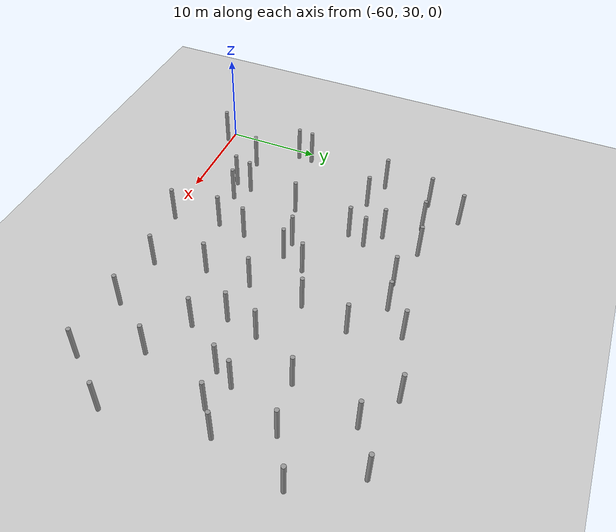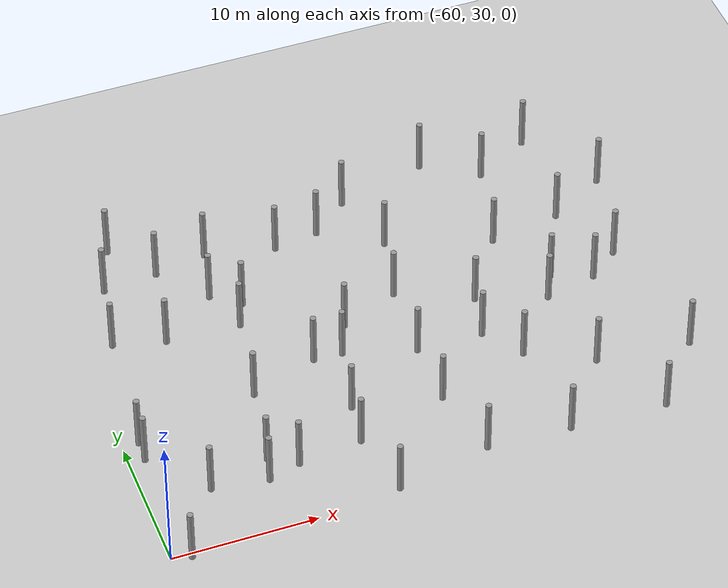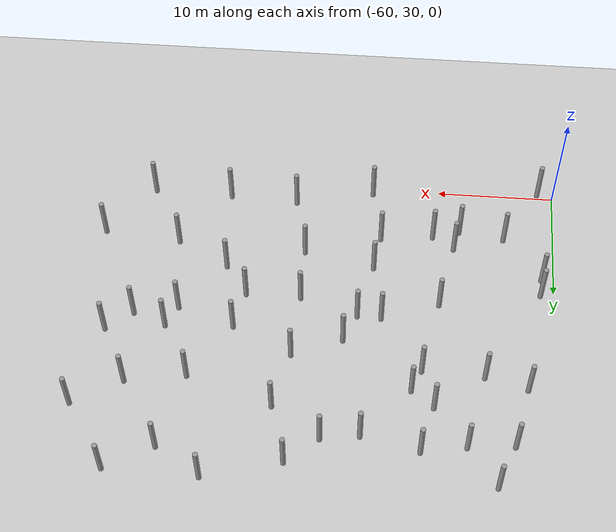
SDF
<sdf version="1.6">
 <world name="default">
  <model name="ground_plane">
   <static>1</static>
   <link name="link">
    <collision name="collision">
     <geometry><plane><normal>0 0 1</normal><size>200 200</size></plane></geometry>
     <surface><friction><ode><mu>100</mu><mu2>50</mu2></ode></friction></surface>
    </collision>
    <visual name="visual">
     <cast_shadows>0</cast_shadows>
     <geometry><plane><normal>0 0 1</normal><size>200 200</size></plane></geometry>
     <material>
      <script><uri>file://media/materials/scripts/gazebo.material</uri><name>Gazebo/Grey</name></script>
     </material>
    </visual>
   </link>
   <pose>0 100 0 0 0 0</pose>
  </model>
  <include>
   <name>tree_-58.6954111815_29.6490568716</name>
   <uri>model://tree</uri>
   <pose>-58.6954111815 29.6490568716 2 0 0 0</pose>
  </include>
  <include>
   <name>tree_-55.7131548604_34.7773403898</name>
   <uri>model://tree</uri>
   <pose>-55.7131548604 34.7773403898 2 0 0 0</pose>
  </include>
  <include>
   <name>tree_-58.9364265224_38.7444154299</name>
   <uri>model://tree</uri>
   <pose>-58.9364265224 38.7444154299 2 0 0 0</pose>
  </include>
  <include>
   <name>tree_-58.8538250546_40.3182792419</name>
   <uri>model://tree</uri>
   <pose>-58.8538250546 40.3182792419 2 0 0 0</pose>
  </include>
  <include>
   <name>tree_-57.7645659668_49.5563178604</name>
   <uri>model://tree</uri>
   <pose>-57.7645659668 49.5563178604 2 0 0 0</pose>
  </include>
  <include>
   <name>tree_-56.7306537601_54.748548233</name>
   <uri>model://tree</uri>
   <pose>-56.7306537601 54.748548233 2 0 0 0</pose>
  </include>
  <include>
   <name>tree_-55.3705627817_58.3967211748</name>
   <uri>model://tree</uri>
   <pose>-55.3705627817 58.3967211748 2 0 0 0</pose>
  </include>
  <include>
   <name>tree_-51.8869014859_34.2263567525</name>
   <uri>model://tree</uri>
   <pose>-51.8869014859 34.2263567525 2 0 0 0</pose>
  </include>
  <include>
   <name>tree_-51.445199585_36.0518226103</name>
   <uri>model://tree</uri>
   <pose>-51.445199585 36.0518226103 2 0 0 0</pose>
  </include>
  <include>
   <name>tree_-50.3468876589_41.8640410045</name>
   <uri>model://tree</uri>
   <pose>-50.3468876589 41.8640410045 2 0 0 0</pose>
  </include>
  <include>
   <name>tree_-54.2519761836_48.6314759795</name>
   <uri>model://tree</uri>
   <pose>-54.2519761836 48.6314759795 2 0 0 0</pose>
  </include>
  <include>
   <name>tree_-50.183995465_51.713817887</name>
   <uri>model://tree</uri>
   <pose>-50.183995465 51.713817887 2 0 0 0</pose>
  </include>
  <include>
   <name>tree_-52.9109426269_55.0868911331</name>
   <uri>model://tree</uri>
   <pose>-52.9109426269 55.0868911331 2 0 0 0</pose>
  </include>
  <include>
   <name>tree_-49.6136075584_34.8997162761</name>
   <uri>model://tree</uri>
   <pose>-49.6136075584 34.8997162761 2 0 0 0</pose>
  </include>
  <include>
   <name>tree_-45.1515815127_35.403032866</name>
   <uri>model://tree</uri>
   <pose>-45.1515815127 35.403032866 2 0 0 0</pose>
  </include>
  <include>
   <name>tree_-45.5539744736_43.541532086</name>
   <uri>model://tree</uri>
   <pose>-45.5539744736 43.541532086 2 0 0 0</pose>
  </include>
  <include>
   <name>tree_-49.0896161592_48.3902954616</name>
   <uri>model://tree</uri>
   <pose>-49.0896161592 48.3902954616 2 0 0 0</pose>
  </include>
  <include>
   <name>tree_-48.3080631997_50.2703659217</name>
   <uri>model://tree</uri>
   <pose>-48.3080631997 50.2703659217 2 0 0 0</pose>
  </include>
  <include>
   <name>tree_-49.221649742_55.7455563007</name>
   <uri>model://tree</uri>
   <pose>-49.221649742 55.7455563007 2 0 0 0</pose>
  </include>
  <include>
   <name>tree_-44.2439092637_30.5734902789</name>
   <uri>model://tree</uri>
   <pose>-44.2439092637 30.5734902789 2 0 0 0</pose>
  </include>
  <include>
   <name>tree_-44.6824874307_38.4864125435</name>
   <uri>model://tree</uri>
   <pose>-44.6824874307 38.4864125435 2 0 0 0</pose>
  </include>
  <include>
   <name>tree_-43.5497187995_43.4573290595</name>
   <uri>model://tree</uri>
   <pose>-43.5497187995 43.4573290595 2 0 0 0</pose>
  </include>
  <include>
   <name>tree_-42.5100196916_45.885700367</name>
   <uri>model://tree</uri>
   <pose>-42.5100196916 45.885700367 2 0 0 0</pose>
  </include>
  <include>
   <name>tree_-44.4050109153_54.6737793332</name>
   <uri>model://tree</uri>
   <pose>-44.4050109153 54.6737793332 2 0 0 0</pose>
  </include>
  <include>
   <name>tree_-41.2285020825_55.1410515847</name>
   <uri>model://tree</uri>
   <pose>-41.2285020825 55.1410515847 2 0 0 0</pose>
  </include>
  <include>
   <name>tree_-37.6069339646_31.9791137535</name>
   <uri>model://tree</uri>
   <pose>-37.6069339646 31.9791137535 2 0 0 0</pose>
  </include>
  <include>
   <name>tree_-38.7378889814_37.233997613</name>
   <uri>model://tree</uri>
   <pose>-38.7378889814 37.233997613 2 0 0 0</pose>
  </include>
  <include>
   <name>tree_-38.7205796473_41.9686524724</name>
   <uri>model://tree</uri>
   <pose>-38.7205796473 41.9686524724 2 0 0 0</pose>
  </include>
  <include>
   <name>tree_-38.3408094072_47.5820165536</name>
   <uri>model://tree</uri>
   <pose>-38.3408094072 47.5820165536 2 0 0 0</pose>
  </include>
  <include>
   <name>tree_-37.1836131276_52.4715223238</name>
   <uri>model://tree</uri>
   <pose>-37.1836131276 52.4715223238 2 0 0 0</pose>
  </include>
  <include>
   <name>tree_-38.5530297753_57.371931317</name>
   <uri>model://tree</uri>
   <pose>-38.5530297753 57.371931317 2 0 0 0</pose>
  </include>
  <include>
   <name>tree_-31.8197515848_31.6836130949</name>
   <uri>model://tree</uri>
   <pose>-31.8197515848 31.6836130949 2 0 0 0</pose>
  </include>
  <include>
   <name>tree_-32.1906731387_39.1961752228</name>
   <uri>model://tree</uri>
   <pose>-32.1906731387 39.1961752228 2 0 0 0</pose>
  </include>
  <include>
   <name>tree_-34.0995566934_41.9067661749</name>
   <uri>model://tree</uri>
   <pose>-34.0995566934 41.9067661749 2 0 0 0</pose>
  </include>
  <include>
   <name>tree_-33.3324075027_45.1871416016</name>
   <uri>model://tree</uri>
   <pose>-33.3324075027 45.1871416016 2 0 0 0</pose>
  </include>
  <include>
   <name>tree_-30.0430158556_50.1412065233</name>
   <uri>model://tree</uri>
   <pose>-30.0430158556 50.1412065233 2 0 0 0</pose>
  </include>
  <include>
   <name>tree_-32.1115029205_59.0873815708</name>
   <uri>model://tree</uri>
   <pose>-32.1115029205 59.0873815708 2 0 0 0</pose>
  </include>
  <include>
   <name>tree_-25.09989425_31.4815461391</name>
   <uri>model://tree</uri>
   <pose>-25.09989425 31.4815461391 2 0 0 0</pose>
  </include>
  <include>
   <name>tree_-27.8363190765_36.8665631055</name>
   <uri>model://tree</uri>
   <pose>-27.8363190765 36.8665631055 2 0 0 0</pose>
  </include>
  <include>
   <name>tree_-28.5851621239_43.6256409969</name>
   <uri>model://tree</uri>
   <pose>-28.5851621239 43.6256409969 2 0 0 0</pose>
  </include>
  <include>
   <name>tree_-27.6765831969_45.4783026008</name>
   <uri>model://tree</uri>
   <pose>-27.6765831969 45.4783026008 2 0 0 0</pose>
  </include>
  <include>
   <name>tree_-25.0215544658_50.9526522547</name>
   <uri>model://tree</uri>
   <pose>-25.0215544658 50.9526522547 2 0 0 0</pose>
  </include>
  <include>
   <name>tree_-28.3762234067_56.6959664083</name>
   <uri>model://tree</uri>
   <pose>-28.3762234067 56.6959664083 2 0 0 0</pose>
  </include>
  <include>
   <name>tree_-21.3402354794_36.2236425035</name>
   <uri>model://tree</uri>
   <pose>-21.3402354794 36.2236425035 2 0 0 0</pose>
  </include>
  <include>
   <name>tree_-24.9189633263_44.4331032177</name>
   <uri>model://tree</uri>
   <pose>-24.9189633263 44.4331032177 2 0 0 0</pose>
  </include>
  <include>
   <name>tree_-22.7278704706_46.133899561</name>
   <uri>model://tree</uri>
   <pose>-22.7278704706 46.133899561 2 0 0 0</pose>
  </include>
  <include>
   <name>tree_-20.9518877146_53.3003817471</name>
   <uri>model://tree</uri>
   <pose>-20.9518877146 53.3003817471 2 0 0 0</pose>
  </include>
  <include>
   <name>tree_-24.4079218886_58.8784089662</name>
   <uri>model://tree</uri>
   <pose>-24.4079218886 58.8784089662 2 0 0 0</pose>
  </include>
 </world>
</sdf>
